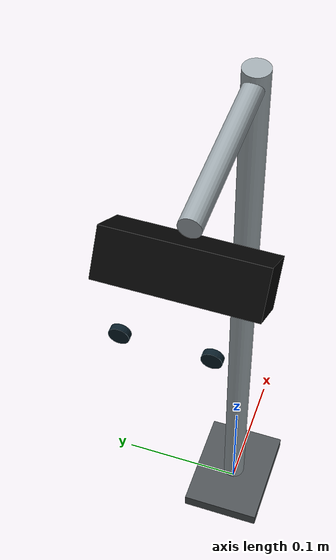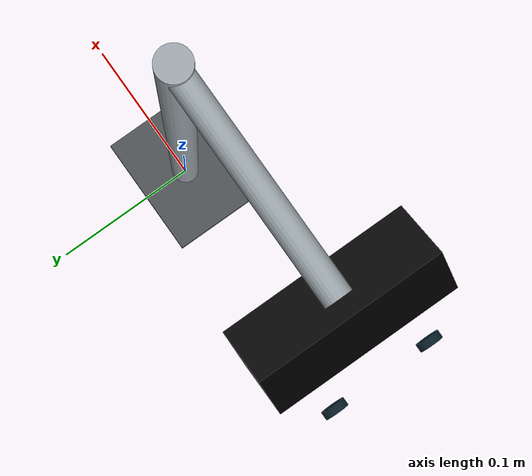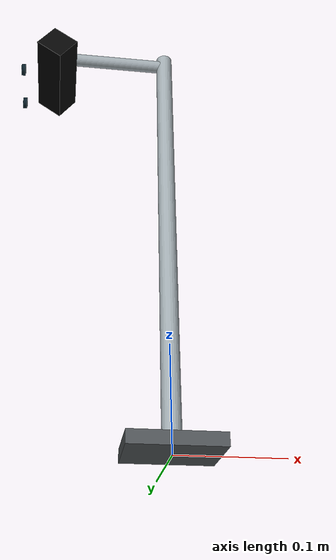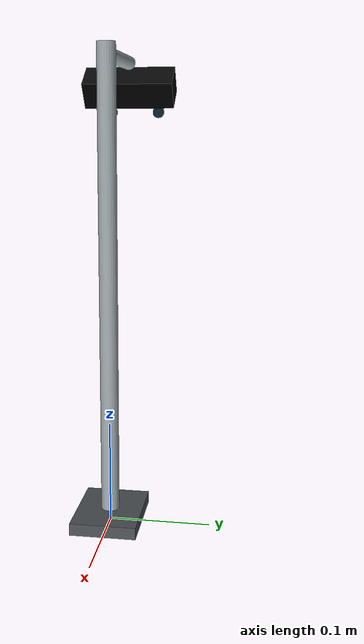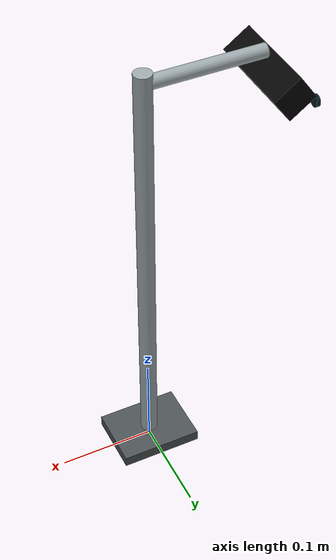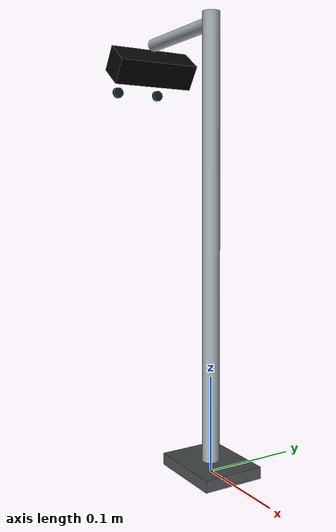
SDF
<?xml version="1.0"?>
<sdf version="1.9">
  <model name="d435_stand">
    <static>true</static>

    <link name="stand_link">
      <visual name="tabletop_base_visual">
        <pose>0 0 0.006 0 0 0</pose>
        <geometry>
          <box>
            <size>0.085 0.065 0.012</size>
          </box>
        </geometry>
        <material>
          <ambient>0.18 0.19 0.20 1</ambient>
          <diffuse>0.30 0.32 0.33 1</diffuse>
          <specular>0.25 0.25 0.25 1</specular>
        </material>
      </visual>
      <collision name="tabletop_base_collision">
        <pose>0 0 0.006 0 0 0</pose>
        <geometry>
          <box>
            <size>0.085 0.065 0.012</size>
          </box>
        </geometry>
      </collision>

      <visual name="short_pole_visual">
        <pose>0 0 0.236 0 0 0</pose>
        <geometry>
          <cylinder>
            <radius>0.009</radius>
            <length>0.460</length>
          </cylinder>
        </geometry>
        <material>
          <ambient>0.45 0.48 0.50 1</ambient>
          <diffuse>0.62 0.66 0.68 1</diffuse>
          <specular>0.35 0.35 0.35 1</specular>
        </material>
      </visual>
      <collision name="short_pole_collision">
        <pose>0 0 0.236 0 0 0</pose>
        <geometry>
          <cylinder>
            <radius>0.009</radius>
            <length>0.460</length>
          </cylinder>
        </geometry>
      </collision>

      <visual name="short_support_arm_visual">
        <pose>-0.060 0 0.455 0 1.5708 0</pose>
        <geometry>
          <cylinder>
            <radius>0.007</radius>
            <length>0.120</length>
          </cylinder>
        </geometry>
        <material>
          <ambient>0.45 0.48 0.50 1</ambient>
          <diffuse>0.62 0.66 0.68 1</diffuse>
          <specular>0.35 0.35 0.35 1</specular>
        </material>
      </visual>
      <collision name="short_support_arm_collision">
        <pose>-0.060 0 0.455 0 1.5708 0</pose>
        <geometry>
          <cylinder>
            <radius>0.007</radius>
            <length>0.120</length>
          </cylinder>
        </geometry>
      </collision>

      <visual name="downward_camera_head_visual">
        <pose>-0.125 0 0.430 0 0.95 3.1416</pose>
        <geometry>
          <box>
            <size>0.030 0.095 0.032</size>
          </box>
        </geometry>
        <material>
          <ambient>0.01 0.01 0.01 1</ambient>
          <diffuse>0.02 0.02 0.02 1</diffuse>
          <specular>0.14 0.14 0.14 1</specular>
        </material>
      </visual>
      <collision name="downward_camera_head_collision">
        <pose>-0.125 0 0.430 0 0.95 3.1416</pose>
        <geometry>
          <box>
            <size>0.030 0.095 0.032</size>
          </box>
        </geometry>
      </collision>

      <visual name="lens_down_left_visual">
        <pose>-0.160 -0.026 0.405 0 1.5708 0</pose>
        <geometry>
          <cylinder>
            <radius>0.006</radius>
            <length>0.004</length>
          </cylinder>
        </geometry>
        <material>
          <ambient>0.03 0.07 0.09 1</ambient>
          <diffuse>0.04 0.12 0.16 1</diffuse>
          <specular>0.30 0.30 0.30 1</specular>
        </material>
      </visual>

      <visual name="lens_down_right_visual">
        <pose>-0.160 0.026 0.405 0 1.5708 0</pose>
        <geometry>
          <cylinder>
            <radius>0.006</radius>
            <length>0.004</length>
          </cylinder>
        </geometry>
        <material>
          <ambient>0.03 0.07 0.09 1</ambient>
          <diffuse>0.04 0.12 0.16 1</diffuse>
          <specular>0.30 0.30 0.30 1</specular>
        </material>
      </visual>

      <sensor name="target_rgb_camera" type="camera">
        <pose>-0.160 0 0.405 0 0.95 3.1416</pose>
        <camera>
          <horizontal_fov>0.72</horizontal_fov>
          <image>
            <width>640</width>
            <height>480</height>
            <format>R8G8B8</format>
          </image>
          <clip>
            <near>0.02</near>
            <far>2.0</far>
          </clip>
        </camera>
        <always_on>1</always_on>
        <update_rate>10</update_rate>
        <visualize>true</visualize>
        <topic>ghost_mgg/d435/color/image_raw</topic>
      </sensor>

      <sensor name="target_depth_camera" type="depth_camera">
        <pose>-0.160 0 0.405 0 0.95 3.1416</pose>
        <camera>
          <horizontal_fov>0.72</horizontal_fov>
          <image>
            <width>640</width>
            <height>480</height>
            <format>R_FLOAT32</format>
          </image>
          <clip>
            <near>0.02</near>
            <far>2.0</far>
          </clip>
        </camera>
        <always_on>1</always_on>
        <update_rate>10</update_rate>
        <visualize>false</visualize>
        <topic>ghost_mgg/d435/depth/image_rect_raw</topic>
      </sensor>
    </link>
  </model>
</sdf>
